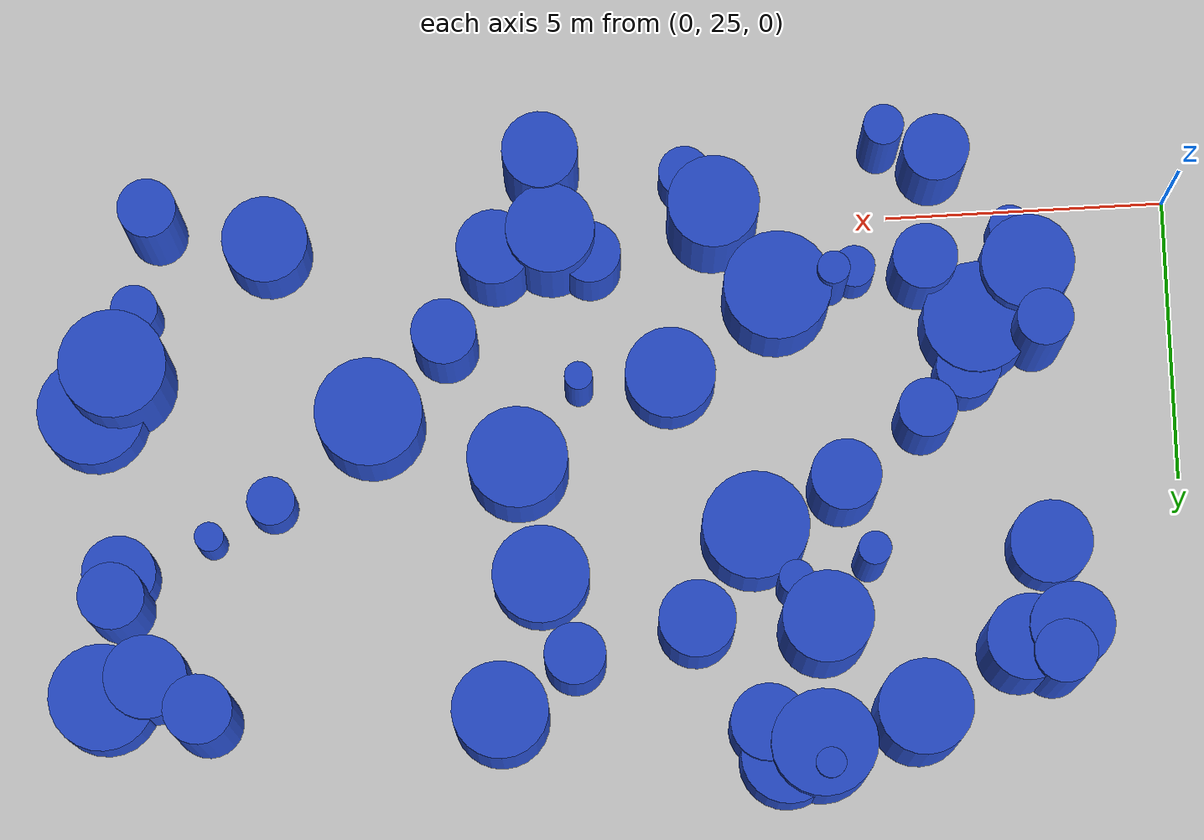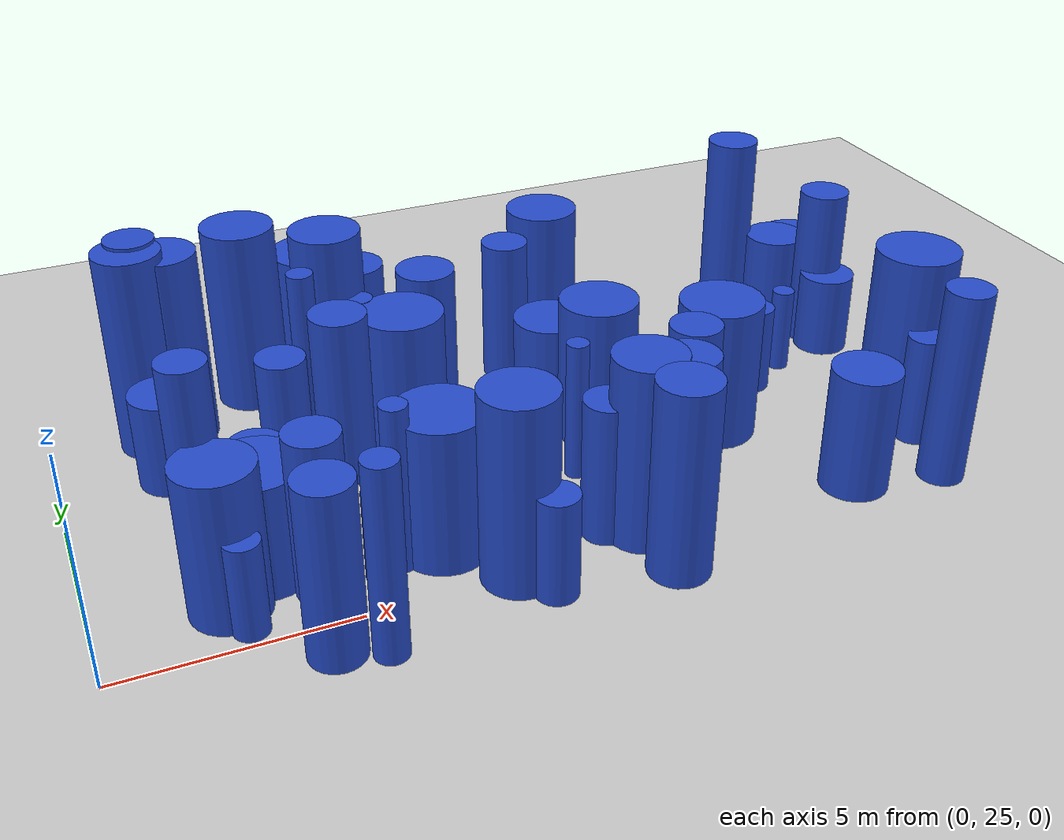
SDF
<sdf version="1.6">
 <world name="default">
  <model name="ground_plane">
   <static>1</static>
   <link name="link">
    <collision name="collision">
     <geometry><plane><normal>0 0 1</normal><size>100 100</size></plane></geometry>
     <surface><friction><ode><mu>100</mu><mu2>50</mu2></ode></friction></surface>
    </collision>
    <visual name="visual">
     <cast_shadows>0</cast_shadows>
     <geometry><plane><normal>0 0 1</normal><size>100 100</size></plane></geometry>
     <material>
      <script><uri>file://media/materials/scripts/gazebo.material</uri><name>Gazebo/Grey</name></script>
     </material>
    </visual>
   </link>
  </model>
  <model name="0">
   <static>0</static>
   <link name="link">
    <inertial>
     <mass>2</mass>
     <inertia><ixx>2.40197</ixx><ixy>0</ixy><ixz>0</ixz><iyy>2.40197</iyy><iyz>0</iyz><izz>0.81177</izz></inertia>
    </inertial>
    <collision name="collision">
     <geometry><cylinder><length>3.46071</length><radius>0.900983</radius></cylinder></geometry>
     <surface><contact><collide_without_contact>1</collide_without_contact></contact></surface>
    </collision>
    <visual name="visual">
     <geometry><cylinder><length>3.46071</length><radius>0.900983</radius></cylinder></geometry>
     <material>
      <script><uri>file://media/materials/scripts/gazebo.material</uri><name>Gazebo/Blue</name></script>
     </material>
    </visual>
    <gravity>0</gravity>
   </link>
   <pose>11.8767 29.2592 1.73036 0 -0 0</pose>
  </model>
  <model name="2">
   <static>0</static>
   <link name="link">
    <inertial>
     <mass>2</mass>
     <inertia>
      <ixx>2.45511</ixx>
      <ixy>0</ixy>
      <ixz>0</ixz>
      <iyy>2.45511</iyy>
      <iyz>0</iyz>
      <izz>0.0849773</izz>
     </inertia>
    </inertial>
    <collision name="collision">
     <geometry><cylinder><length>3.8047</length><radius>0.291509</radius></cylinder></geometry>
     <surface><contact><collide_without_contact>1</collide_without_contact></contact></surface>
    </collision>
    <visual name="visual">
     <geometry><cylinder><length>3.8047</length><radius>0.291509</radius></cylinder></geometry>
     <material>
      <script><uri>file://media/materials/scripts/gazebo.material</uri><name>Gazebo/Blue</name></script>
     </material>
    </visual>
    <gravity>0</gravity>
   </link>
   <pose>6.11121 26.2319 1.90235 0 -0 0</pose>
  </model>
  <model name="12">
   <static>0</static>
   <link name="link">
    <inertial>
     <mass>2</mass>
     <inertia><ixx>2.82446</ixx><ixy>0</ixy><ixz>0</ixz><iyy>2.82446</iyy><iyz>0</iyz><izz>0.396141</izz></inertia>
    </inertial>
    <collision name="collision">
     <geometry><cylinder><length>3.96967</length><radius>0.629398</radius></cylinder></geometry>
     <surface><contact><collide_without_contact>1</collide_without_contact></contact></surface>
    </collision>
    <visual name="visual">
     <geometry><cylinder><length>3.96967</length><radius>0.629398</radius></cylinder></geometry>
     <material>
      <script><uri>file://media/materials/scripts/gazebo.material</uri><name>Gazebo/Blue</name></script>
     </material>
    </visual>
    <gravity>0</gravity>
   </link>
   <pose>6.09867 29.9204 1.98484 0 -0 0</pose>
  </model>
  <model name="23">
   <static>0</static>
   <link name="link">
    <inertial>
     <mass>2</mass>
     <inertia>
      <ixx>3.22473</ixx>
      <ixy>0</ixy>
      <ixz>0</ixz>
      <iyy>3.22473</iyy>
      <iyz>0</iyz>
      <izz>0.0871934</izz>
     </inertia>
    </inertial>
    <collision name="collision">
     <geometry><cylinder><length>4.36884</length><radius>0.295285</radius></cylinder></geometry>
     <surface><contact><collide_without_contact>1</collide_without_contact></contact></surface>
    </collision>
    <visual name="visual">
     <geometry><cylinder><length>4.36884</length><radius>0.295285</radius></cylinder></geometry>
     <material>
      <script><uri>file://media/materials/scripts/gazebo.material</uri><name>Gazebo/Blue</name></script>
     </material>
    </visual>
    <gravity>0</gravity>
   </link>
   <pose>5.68019 31.273 2.18442 0 -0 0</pose>
  </model>
  <model name="29">
   <static>0</static>
   <link name="link">
    <inertial>
     <mass>2</mass>
     <inertia><ixx>2.78165</ixx><ixy>0</ixy><ixz>0</ixz><iyy>2.78165</iyy><iyz>0</iyz><izz>0.746331</izz></inertia>
    </inertial>
    <collision name="collision">
     <geometry><cylinder><length>3.80143</length><radius>0.863904</radius></cylinder></geometry>
     <surface><contact><collide_without_contact>1</collide_without_contact></contact></surface>
    </collision>
    <visual name="visual">
     <geometry><cylinder><length>3.80143</length><radius>0.863904</radius></cylinder></geometry>
     <material>
      <script><uri>file://media/materials/scripts/gazebo.material</uri><name>Gazebo/Blue</name></script>
     </material>
    </visual>
    <gravity>0</gravity>
   </link>
   <pose>12.4132 33.7284 1.90072 0 -0 0</pose>
  </model>
  <model name="38">
   <static>0</static>
   <link name="link">
    <inertial>
     <mass>2</mass>
     <inertia><ixx>1.23877</ixx><ixy>0</ixy><ixz>0</ixz><iyy>1.23877</iyy><iyz>0</iyz><izz>0.661511</izz></inertia>
    </inertial>
    <collision name="collision">
     <geometry><cylinder><length>2.33412</length><radius>0.813333</radius></cylinder></geometry>
     <surface><contact><collide_without_contact>1</collide_without_contact></contact></surface>
    </collision>
    <visual name="visual">
     <geometry><cylinder><length>2.33412</length><radius>0.813333</radius></cylinder></geometry>
     <material>
      <script><uri>file://media/materials/scripts/gazebo.material</uri><name>Gazebo/Blue</name></script>
     </material>
    </visual>
    <gravity>0</gravity>
   </link>
   <pose>9.0777 27.7968 1.16706 0 -0 0</pose>
  </model>
  <model name="49">
   <static>0</static>
   <link name="link">
    <inertial>
     <mass>2</mass>
     <inertia><ixx>3.34845</ixx><ixy>0</ixy><ixz>0</ixz><iyy>3.34845</iyy><iyz>0</iyz><izz>0.625624</izz></inertia>
    </inertial>
    <collision name="collision">
     <geometry><cylinder><length>4.26777</length><radius>0.790964</radius></cylinder></geometry>
     <surface><contact><collide_without_contact>1</collide_without_contact></contact></surface>
    </collision>
    <visual name="visual">
     <geometry><cylinder><length>4.26777</length><radius>0.790964</radius></cylinder></geometry>
     <material>
      <script><uri>file://media/materials/scripts/gazebo.material</uri><name>Gazebo/Blue</name></script>
     </material>
    </visual>
    <gravity>0</gravity>
   </link>
   <pose>11.0842 25.3159 2.13388 0 -0 0</pose>
  </model>
  <model name="55">
   <static>0</static>
   <link name="link">
    <inertial>
     <mass>2</mass>
     <inertia><ixx>1.0028</ixx><ixy>0</ixy><ixz>0</ixz><iyy>1.0028</iyy><iyz>0</iyz><izz>0.0791024</izz></inertia>
    </inertial>
    <collision name="collision">
     <geometry><cylinder><length>2.40406</length><radius>0.281252</radius></cylinder></geometry>
     <surface><contact><collide_without_contact>1</collide_without_contact></contact></surface>
    </collision>
    <visual name="visual">
     <geometry><cylinder><length>2.40406</length><radius>0.281252</radius></cylinder></geometry>
     <material>
      <script><uri>file://media/materials/scripts/gazebo.material</uri><name>Gazebo/Blue</name></script>
     </material>
    </visual>
    <gravity>0</gravity>
   </link>
   <pose>8.32268 25.1985 1.20203 0 -0 0</pose>
  </model>
  <model name="56">
   <static>0</static>
   <link name="link">
    <inertial>
     <mass>2</mass>
     <inertia>
      <ixx>1.84784</ixx>
      <ixy>0</ixy>
      <ixz>0</ixz>
      <iyy>1.84784</iyy>
      <iyz>0</iyz>
      <izz>0.0636746</izz>
     </inertia>
    </inertial>
    <collision name="collision">
     <geometry><cylinder><length>3.30091</length><radius>0.252338</radius></cylinder></geometry>
     <surface><contact><collide_without_contact>1</collide_without_contact></contact></surface>
    </collision>
    <visual name="visual">
     <geometry><cylinder><length>3.30091</length><radius>0.252338</radius></cylinder></geometry>
     <material>
      <script><uri>file://media/materials/scripts/gazebo.material</uri><name>Gazebo/Blue</name></script>
     </material>
    </visual>
    <gravity>0</gravity>
   </link>
   <pose>10.7197 27.8588 1.65046 0 -0 0</pose>
  </model>
  <model name="58">
   <static>0</static>
   <link name="link">
    <inertial>
     <mass>2</mass>
     <inertia>
      <ixx>0.763986</ixx>
      <ixy>0</ixy>
      <ixz>0</ixz>
      <iyy>0.763986</iyy>
      <iyz>0</iyz>
      <izz>0.0695727</izz>
     </inertia>
    </inertial>
    <collision name="collision">
     <geometry><cylinder><length>2.0917</length><radius>0.263766</radius></cylinder></geometry>
     <surface><contact><collide_without_contact>1</collide_without_contact></contact></surface>
    </collision>
    <visual name="visual">
     <geometry><cylinder><length>2.0917</length><radius>0.263766</radius></cylinder></geometry>
     <material>
      <script><uri>file://media/materials/scripts/gazebo.material</uri><name>Gazebo/Blue</name></script>
     </material>
    </visual>
    <gravity>0</gravity>
   </link>
   <pose>17.4453 30.2732 1.04585 0 -0 0</pose>
  </model>
  <model name="66">
   <static>0</static>
   <link name="link">
    <inertial>
     <mass>2</mass>
     <inertia><ixx>1.19036</ixx><ixy>0</ixy><ixz>0</ixz><iyy>1.19036</iyy><iyz>0</iyz><izz>0.340374</izz></inertia>
    </inertial>
    <collision name="collision">
     <geometry><cylinder><length>2.47407</length><radius>0.583416</radius></cylinder></geometry>
     <surface><contact><collide_without_contact>1</collide_without_contact></contact></surface>
    </collision>
    <visual name="visual">
     <geometry><cylinder><length>2.47407</length><radius>0.583416</radius></cylinder></geometry>
     <material>
      <script><uri>file://media/materials/scripts/gazebo.material</uri><name>Gazebo/Blue</name></script>
     </material>
    </visual>
    <gravity>0</gravity>
   </link>
   <pose>3.76922 27.9809 1.23704 0 -0 0</pose>
  </model>
  <model name="76">
   <static>0</static>
   <link name="link">
    <inertial>
     <mass>2</mass>
     <inertia><ixx>4.08742</ixx><ixy>0</ixy><ixz>0</ixz><iyy>4.08742</iyy><iyz>0</iyz><izz>0.660231</izz></inertia>
    </inertial>
    <collision name="collision">
     <geometry><cylinder><length>4.74803</length><radius>0.812546</radius></cylinder></geometry>
     <surface><contact><collide_without_contact>1</collide_without_contact></contact></surface>
    </collision>
    <visual name="visual">
     <geometry><cylinder><length>4.74803</length><radius>0.812546</radius></cylinder></geometry>
     <material>
      <script><uri>file://media/materials/scripts/gazebo.material</uri><name>Gazebo/Blue</name></script>
     </material>
    </visual>
    <gravity>0</gravity>
   </link>
   <pose>6.57905 32.4521 2.37402 0 -0 0</pose>
  </model>
  <model name="81">
   <static>0</static>
   <link name="link">
    <inertial>
     <mass>2</mass>
     <inertia><ixx>2.21257</ixx><ixy>0</ixy><ixz>0</ixz><iyy>2.21257</iyy><iyz>0</iyz><izz>0.306287</izz></inertia>
    </inertial>
    <collision name="collision">
     <geometry><cylinder><length>3.51519</length><radius>0.553432</radius></cylinder></geometry>
     <surface><contact><collide_without_contact>1</collide_without_contact></contact></surface>
    </collision>
    <visual name="visual">
     <geometry><cylinder><length>3.51519</length><radius>0.553432</radius></cylinder></geometry>
     <material>
      <script><uri>file://media/materials/scripts/gazebo.material</uri><name>Gazebo/Blue</name></script>
     </material>
    </visual>
    <gravity>0</gravity>
   </link>
   <pose>11.0425 32.7903 1.75759 0 -0 0</pose>
  </model>
  <model name="84">
   <static>0</static>
   <link name="link">
    <inertial>
     <mass>2</mass>
     <inertia><ixx>3.84942</ixx><ixy>0</ixy><ixz>0</ixz><iyy>3.84942</iyy><iyz>0</iyz><izz>0.583531</izz></inertia>
    </inertial>
    <collision name="collision">
     <geometry><cylinder><length>4.62017</length><radius>0.763892</radius></cylinder></geometry>
     <surface><contact><collide_without_contact>1</collide_without_contact></contact></surface>
    </collision>
    <visual name="visual">
     <geometry><cylinder><length>4.62017</length><radius>0.763892</radius></cylinder></geometry>
     <material>
      <script><uri>file://media/materials/scripts/gazebo.material</uri><name>Gazebo/Blue</name></script>
     </material>
    </visual>
    <gravity>0</gravity>
   </link>
   <pose>3.06605 32.9901 2.31008 0 -0 0</pose>
  </model>
  <model name="111">
   <static>0</static>
   <link name="link">
    <inertial>
     <mass>2</mass>
     <inertia><ixx>1.70817</ixx><ixy>0</ixy><ixz>0</ixz><iyy>1.70817</iyy><iyz>0</iyz><izz>0.588369</izz></inertia>
    </inertial>
    <collision name="collision">
     <geometry><cylinder><length>2.91271</length><radius>0.767052</radius></cylinder></geometry>
     <surface><contact><collide_without_contact>1</collide_without_contact></contact></surface>
    </collision>
    <visual name="visual">
     <geometry><cylinder><length>2.91271</length><radius>0.767052</radius></cylinder></geometry>
     <material>
      <script><uri>file://media/materials/scripts/gazebo.material</uri><name>Gazebo/Blue</name></script>
     </material>
    </visual>
    <gravity>0</gravity>
   </link>
   <pose>16.162 25.0947 1.45636 0 -0 0</pose>
  </model>
  <model name="128">
   <static>0</static>
   <link name="link">
    <inertial>
     <mass>2</mass>
     <inertia><ixx>4.19355</ixx><ixy>0</ixy><ixz>0</ixz><iyy>4.19355</iyy><iyz>0</iyz><izz>0.568289</izz></inertia>
    </inertial>
    <collision name="collision">
     <geometry><cylinder><length>4.84318</length><radius>0.75385</radius></cylinder></geometry>
     <surface><contact><collide_without_contact>1</collide_without_contact></contact></surface>
    </collision>
    <visual name="visual">
     <geometry><cylinder><length>4.84318</length><radius>0.75385</radius></cylinder></geometry>
     <material>
      <script><uri>file://media/materials/scripts/gazebo.material</uri><name>Gazebo/Blue</name></script>
     </material>
    </visual>
    <gravity>0</gravity>
   </link>
   <pose>2.32334 32.8301 2.42159 0 -0 0</pose>
  </model>
  <model name="130">
   <static>0</static>
   <link name="link">
    <inertial>
     <mass>2</mass>
     <inertia><ixx>2.29747</ixx><ixy>0</ixy><ixz>0</ixz><iyy>2.29747</iyy><iyz>0</iyz><izz>0.917787</izz></inertia>
    </inertial>
    <collision name="collision">
     <geometry><cylinder><length>3.32137</length><radius>0.958012</radius></cylinder></geometry>
     <surface><contact><collide_without_contact>1</collide_without_contact></contact></surface>
    </collision>
    <visual name="visual">
     <geometry><cylinder><length>3.32137</length><radius>0.958012</radius></cylinder></geometry>
     <material>
      <script><uri>file://media/materials/scripts/gazebo.material</uri><name>Gazebo/Blue</name></script>
     </material>
    </visual>
    <gravity>0</gravity>
   </link>
   <pose>7.72279 30.676 1.66068 0 -0 0</pose>
  </model>
  <model name="134">
   <static>0</static>
   <link name="link">
    <inertial>
     <mass>2</mass>
     <inertia><ixx>3.43491</ixx><ixy>0</ixy><ixz>0</ixz><iyy>3.43491</iyy><iyz>0</iyz><izz>0.918392</izz></inertia>
    </inertial>
    <collision name="collision">
     <geometry><cylinder><length>4.22543</length><radius>0.958327</radius></cylinder></geometry>
     <surface><contact><collide_without_contact>1</collide_without_contact></contact></surface>
    </collision>
    <visual name="visual">
     <geometry><cylinder><length>4.22543</length><radius>0.958327</radius></cylinder></geometry>
     <material>
      <script><uri>file://media/materials/scripts/gazebo.material</uri><name>Gazebo/Blue</name></script>
     </material>
    </visual>
    <gravity>0</gravity>
   </link>
   <pose>18.9092 27.2959 2.11272 0 -0 0</pose>
  </model>
  <model name="142">
   <static>0</static>
   <link name="link">
    <inertial>
     <mass>2</mass>
     <inertia><ixx>2.57149</ixx><ixy>0</ixy><ixz>0</ixz><iyy>2.57149</iyy><iyz>0</iyz><izz>0.273123</izz></inertia>
    </inertial>
    <collision name="collision">
     <geometry><cylinder><length>3.82225</length><radius>0.522611</radius></cylinder></geometry>
     <surface><contact><collide_without_contact>1</collide_without_contact></contact></surface>
    </collision>
    <visual name="visual">
     <geometry><cylinder><length>3.82225</length><radius>0.522611</radius></cylinder></geometry>
     <material>
      <script><uri>file://media/materials/scripts/gazebo.material</uri><name>Gazebo/Blue</name></script>
     </material>
    </visual>
    <gravity>0</gravity>
   </link>
   <pose>4.58908 28.803 1.91112 0 -0 0</pose>
  </model>
  <model name="159">
   <static>0</static>
   <link name="link">
    <inertial>
     <mass>2</mass>
     <inertia><ixx>2.41753</ixx><ixy>0</ixy><ixz>0</ixz><iyy>2.41753</iyy><iyz>0</iyz><izz>0.33652</izz></inertia>
    </inertial>
    <collision name="collision">
     <geometry><cylinder><length>3.67364</length><radius>0.580103</radius></cylinder></geometry>
     <surface><contact><collide_without_contact>1</collide_without_contact></contact></surface>
    </collision>
    <visual name="visual">
     <geometry><cylinder><length>3.67364</length><radius>0.580103</radius></cylinder></geometry>
     <material>
      <script><uri>file://media/materials/scripts/gazebo.material</uri><name>Gazebo/Blue</name></script>
     </material>
    </visual>
    <gravity>0</gravity>
   </link>
   <pose>4.4809 26.1024 1.83682 0 -0 0</pose>
  </model>
  <model name="173">
   <static>0</static>
   <link name="link">
    <inertial>
     <mass>2</mass>
     <inertia><ixx>1.70372</ixx><ixy>0</ixy><ixz>0</ixz><iyy>1.70372</iyy><iyz>0</iyz><izz>0.477702</izz></inertia>
    </inertial>
    <collision name="collision">
     <geometry><cylinder><length>2.96467</length><radius>0.69116</radius></cylinder></geometry>
     <surface><contact><collide_without_contact>1</collide_without_contact></contact></surface>
    </collision>
    <visual name="visual">
     <geometry><cylinder><length>2.96467</length><radius>0.69116</radius></cylinder></geometry>
     <material>
      <script><uri>file://media/materials/scripts/gazebo.material</uri><name>Gazebo/Blue</name></script>
     </material>
    </visual>
    <gravity>0</gravity>
   </link>
   <pose>7.67345 34.1495 1.48233 0 -0 0</pose>
  </model>
  <model name="179">
   <static>0</static>
   <link name="link">
    <inertial>
     <mass>2</mass>
     <inertia><ixx>2.24414</ixx><ixy>0</ixy><ixz>0</ixz><iyy>2.24414</iyy><iyz>0</iyz><izz>0.695815</izz></inertia>
    </inertial>
    <collision name="collision">
     <geometry><cylinder><length>3.37304</length><radius>0.834156</radius></cylinder></geometry>
     <surface><contact><collide_without_contact>1</collide_without_contact></contact></surface>
    </collision>
    <visual name="visual">
     <geometry><cylinder><length>3.37304</length><radius>0.834156</radius></cylinder></geometry>
     <material>
      <script><uri>file://media/materials/scripts/gazebo.material</uri><name>Gazebo/Blue</name></script>
     </material>
    </visual>
    <gravity>0</gravity>
   </link>
   <pose>2.65622 26.2548 1.68652 0 -0 0</pose>
  </model>
  <model name="185">
   <static>0</static>
   <link name="link">
    <inertial>
     <mass>2</mass>
     <inertia><ixx>3.66198</ixx><ixy>0</ixy><ixz>0</ixz><iyy>3.66198</iyy><iyz>0</iyz><izz>0.269309</izz></inertia>
    </inertial>
    <collision name="collision">
     <geometry><cylinder><length>4.60043</length><radius>0.51895</radius></cylinder></geometry>
     <surface><contact><collide_without_contact>1</collide_without_contact></contact></surface>
    </collision>
    <visual name="visual">
     <geometry><cylinder><length>4.60043</length><radius>0.51895</radius></cylinder></geometry>
     <material>
      <script><uri>file://media/materials/scripts/gazebo.material</uri><name>Gazebo/Blue</name></script>
     </material>
    </visual>
    <gravity>0</gravity>
   </link>
   <pose>18.149 24.6254 2.30022 0 -0 0</pose>
  </model>
  <model name="191">
   <static>0</static>
   <link name="link">
    <inertial>
     <mass>2</mass>
     <inertia><ixx>3.6846</ixx><ixy>0</ixy><ixz>0</ixz><iyy>3.6846</iyy><iyz>0</iyz><izz>0.720558</izz></inertia>
    </inertial>
    <collision name="collision">
     <geometry><cylinder><length>4.46609</length><radius>0.848857</radius></cylinder></geometry>
     <surface><contact><collide_without_contact>1</collide_without_contact></contact></surface>
    </collision>
    <visual name="visual">
     <geometry><cylinder><length>4.46609</length><radius>0.848857</radius></cylinder></geometry>
     <material>
      <script><uri>file://media/materials/scripts/gazebo.material</uri><name>Gazebo/Blue</name></script>
     </material>
    </visual>
    <gravity>0</gravity>
   </link>
   <pose>4.94776 34.1054 2.23304 0 -0 0</pose>
  </model>
  <model name="202">
   <static>0</static>
   <link name="link">
    <inertial>
     <mass>2</mass>
     <inertia><ixx>2.89603</ixx><ixy>0</ixy><ixz>0</ixz><iyy>2.89603</iyy><iyz>0</iyz><izz>0.355142</izz></inertia>
    </inertial>
    <collision name="collision">
     <geometry><cylinder><length>4.03866</length><radius>0.595938</radius></cylinder></geometry>
     <surface><contact><collide_without_contact>1</collide_without_contact></contact></surface>
    </collision>
    <visual name="visual">
     <geometry><cylinder><length>4.03866</length><radius>0.595938</radius></cylinder></geometry>
     <material>
      <script><uri>file://media/materials/scripts/gazebo.material</uri><name>Gazebo/Blue</name></script>
     </material>
    </visual>
    <gravity>0</gravity>
   </link>
   <pose>19.1386 31.3744 2.01933 0 -0 0</pose>
  </model>
  <model name="207">
   <static>0</static>
   <link name="link">
    <inertial>
     <mass>2</mass>
     <inertia><ixx>2.20257</ixx><ixy>0</ixy><ixz>0</ixz><iyy>2.20257</iyy><iyz>0</iyz><izz>0.475126</izz></inertia>
    </inertial>
    <collision name="collision">
     <geometry><cylinder><length>3.43367</length><radius>0.689294</radius></cylinder></geometry>
     <surface><contact><collide_without_contact>1</collide_without_contact></contact></surface>
    </collision>
    <visual name="visual">
     <geometry><cylinder><length>3.43367</length><radius>0.689294</radius></cylinder></geometry>
     <material>
      <script><uri>file://media/materials/scripts/gazebo.material</uri><name>Gazebo/Blue</name></script>
     </material>
    </visual>
    <gravity>0</gravity>
   </link>
   <pose>8.84906 32.282 1.71683 0 -0 0</pose>
  </model>
  <model name="209">
   <static>0</static>
   <link name="link">
    <inertial>
     <mass>2</mass>
     <inertia><ixx>2.42991</ixx><ixy>0</ixy><ixz>0</ixz><iyy>2.42991</iyy><iyz>0</iyz><izz>0.339042</izz></inertia>
    </inertial>
    <collision name="collision">
     <geometry><cylinder><length>3.68271</length><radius>0.582273</radius></cylinder></geometry>
     <surface><contact><collide_without_contact>1</collide_without_contact></contact></surface>
    </collision>
    <visual name="visual">
     <geometry><cylinder><length>3.68271</length><radius>0.582273</radius></cylinder></geometry>
     <material>
      <script><uri>file://media/materials/scripts/gazebo.material</uri><name>Gazebo/Blue</name></script>
     </material>
    </visual>
    <gravity>0</gravity>
   </link>
   <pose>13.0609 26.9856 1.84135 0 -0 0</pose>
  </model>
  <model name="220">
   <static>0</static>
   <link name="link">
    <inertial>
     <mass>2</mass>
     <inertia><ixx>1.2348</ixx><ixy>0</ixy><ixz>0</ixz><iyy>1.2348</iyy><iyz>0</iyz><izz>0.175576</izz></inertia>
    </inertial>
    <collision name="collision">
     <geometry><cylinder><length>2.62337</length><radius>0.419018</radius></cylinder></geometry>
     <surface><contact><collide_without_contact>1</collide_without_contact></contact></surface>
    </collision>
    <visual name="visual">
     <geometry><cylinder><length>2.62337</length><radius>0.419018</radius></cylinder></geometry>
     <material>
      <script><uri>file://media/materials/scripts/gazebo.material</uri><name>Gazebo/Blue</name></script>
     </material>
    </visual>
    <gravity>0</gravity>
   </link>
   <pose>18.5545 26.1727 1.31169 0 -0 0</pose>
  </model>
  <model name="226">
   <static>0</static>
   <link name="link">
    <inertial>
     <mass>2</mass>
     <inertia>
      <ixx>0.899999</ixx>
      <ixy>0</ixy>
      <ixz>0</ixz>
      <iyy>0.899999</iyy>
      <iyz>0</iyz>
      <izz>0.446761</izz>
     </inertia>
    </inertial>
    <collision name="collision">
     <geometry><cylinder><length>2.01487</length><radius>0.668402</radius></cylinder></geometry>
     <surface><contact><collide_without_contact>1</collide_without_contact></contact></surface>
    </collision>
    <visual name="visual">
     <geometry><cylinder><length>2.01487</length><radius>0.668402</radius></cylinder></geometry>
     <material>
      <script><uri>file://media/materials/scripts/gazebo.material</uri><name>Gazebo/Blue</name></script>
     </material>
    </visual>
    <gravity>0</gravity>
   </link>
   <pose>19.0865 30.8277 1.00744 0 -0 0</pose>
  </model>
  <model name="229">
   <static>0</static>
   <link name="link">
    <inertial>
     <mass>2</mass>
     <inertia><ixx>1.23386</ixx><ixy>0</ixy><ixz>0</ixz><iyy>1.23386</iyy><iyz>0</iyz><izz>0.565515</izz></inertia>
    </inertial>
    <collision name="collision">
     <geometry><cylinder><length>2.38885</length><radius>0.752008</radius></cylinder></geometry>
     <surface><contact><collide_without_contact>1</collide_without_contact></contact></surface>
    </collision>
    <visual name="visual">
     <geometry><cylinder><length>2.38885</length><radius>0.752008</radius></cylinder></geometry>
     <material>
      <script><uri>file://media/materials/scripts/gazebo.material</uri><name>Gazebo/Blue</name></script>
     </material>
    </visual>
    <gravity>0</gravity>
   </link>
   <pose>18.6936 32.7255 1.19443 0 -0 0</pose>
  </model>
  <model name="230">
   <static>0</static>
   <link name="link">
    <inertial>
     <mass>2</mass>
     <inertia><ixx>1.61781</ixx><ixy>0</ixy><ixz>0</ixz><iyy>1.61781</iyy><iyz>0</iyz><izz>0.759354</izz></inertia>
    </inertial>
    <collision name="collision">
     <geometry><cylinder><length>2.72558</length><radius>0.871409</radius></cylinder></geometry>
     <surface><contact><collide_without_contact>1</collide_without_contact></contact></surface>
    </collision>
    <visual name="visual">
     <geometry><cylinder><length>2.72558</length><radius>0.871409</radius></cylinder></geometry>
     <material>
      <script><uri>file://media/materials/scripts/gazebo.material</uri><name>Gazebo/Blue</name></script>
     </material>
    </visual>
    <gravity>0</gravity>
   </link>
   <pose>7.33627 34.7357 1.36279 0 -0 0</pose>
  </model>
  <model name="248">
   <static>0</static>
   <link name="link">
    <inertial>
     <mass>2</mass>
     <inertia><ixx>4.14201</ixx><ixy>0</ixy><ixz>0</ixz><iyy>4.14201</iyy><iyz>0</iyz><izz>0.382015</izz></inertia>
    </inertial>
    <collision name="collision">
     <geometry><cylinder><length>4.86888</length><radius>0.618074</radius></cylinder></geometry>
     <surface><contact><collide_without_contact>1</collide_without_contact></contact></surface>
    </collision>
    <visual name="visual">
     <geometry><cylinder><length>4.86888</length><radius>0.618074</radius></cylinder></geometry>
     <material>
      <script><uri>file://media/materials/scripts/gazebo.material</uri><name>Gazebo/Blue</name></script>
     </material>
    </visual>
    <gravity>0</gravity>
   </link>
   <pose>17.681 33.4967 2.43444 0 -0 0</pose>
  </model>
  <model name="277">
   <static>0</static>
   <link name="link">
    <inertial>
     <mass>2</mass>
     <inertia><ixx>1.18328</ixx><ixy>0</ixy><ixz>0</ixz><iyy>1.18328</iyy><iyz>0</iyz><izz>0.931912</izz></inertia>
    </inertial>
    <collision name="collision">
     <geometry><cylinder><length>2.0746</length><radius>0.965356</radius></cylinder></geometry>
     <surface><contact><collide_without_contact>1</collide_without_contact></contact></surface>
    </collision>
    <visual name="visual">
     <geometry><cylinder><length>2.0746</length><radius>0.965356</radius></cylinder></geometry>
     <material>
      <script><uri>file://media/materials/scripts/gazebo.material</uri><name>Gazebo/Blue</name></script>
     </material>
    </visual>
    <gravity>0</gravity>
   </link>
   <pose>19.443 27.9091 1.0373 0 -0 0</pose>
  </model>
  <model name="286">
   <static>0</static>
   <link name="link">
    <inertial>
     <mass>2</mass>
     <inertia><ixx>1.03165</ixx><ixy>0</ixy><ixz>0</ixz><iyy>1.03165</iyy><iyz>0</iyz><izz>0.212197</izz></inertia>
    </inertial>
    <collision name="collision">
     <geometry><cylinder><length>2.35655</length><radius>0.460649</radius></cylinder></geometry>
     <surface><contact><collide_without_contact>1</collide_without_contact></contact></surface>
    </collision>
    <visual name="visual">
     <geometry><cylinder><length>2.35655</length><radius>0.460649</radius></cylinder></geometry>
     <material>
      <script><uri>file://media/materials/scripts/gazebo.material</uri><name>Gazebo/Blue</name></script>
     </material>
    </visual>
    <gravity>0</gravity>
   </link>
   <pose>8.63706 24.2219 1.17827 0 -0 0</pose>
  </model>
  <model name="311">
   <static>0</static>
   <link name="link">
    <inertial>
     <mass>2</mass>
     <inertia><ixx>3.47505</ixx><ixy>0</ixy><ixz>0</ixz><iyy>3.47505</iyy><iyz>0</iyz><izz>0.455711</izz></inertia>
    </inertial>
    <collision name="collision">
     <geometry><cylinder><length>4.41398</length><radius>0.675064</radius></cylinder></geometry>
     <surface><contact><collide_without_contact>1</collide_without_contact></contact></surface>
    </collision>
    <visual name="visual">
     <geometry><cylinder><length>4.41398</length><radius>0.675064</radius></cylinder></geometry>
     <material>
      <script><uri>file://media/materials/scripts/gazebo.material</uri><name>Gazebo/Blue</name></script>
     </material>
    </visual>
    <gravity>0</gravity>
   </link>
   <pose>11.1914 23.9374 2.20699 0 -0 0</pose>
  </model>
  <model name="335">
   <static>0</static>
   <link name="link">
    <inertial>
     <mass>2</mass>
     <inertia><ixx>1.09017</ixx><ixy>0</ixy><ixz>0</ixz><iyy>1.09017</iyy><iyz>0</iyz><izz>0.555493</izz></inertia>
    </inertial>
    <collision name="collision">
     <geometry><cylinder><length>2.20784</length><radius>0.745314</radius></cylinder></geometry>
     <surface><contact><collide_without_contact>1</collide_without_contact></contact></surface>
    </collision>
    <visual name="visual">
     <geometry><cylinder><length>2.20784</length><radius>0.745314</radius></cylinder></geometry>
     <material>
      <script><uri>file://media/materials/scripts/gazebo.material</uri><name>Gazebo/Blue</name></script>
     </material>
    </visual>
    <gravity>0</gravity>
   </link>
   <pose>2.45809 31.1658 1.10392 0 -0 0</pose>
  </model>
  <model name="337">
   <static>0</static>
   <link name="link">
    <inertial>
     <mass>2</mass>
     <inertia><ixx>2.32795</ixx><ixy>0</ixy><ixz>0</ixz><iyy>2.32795</iyy><iyz>0</iyz><izz>0.931843</izz></inertia>
    </inertial>
    <collision name="collision">
     <geometry><cylinder><length>3.34248</length><radius>0.96532</radius></cylinder></geometry>
     <surface><contact><collide_without_contact>1</collide_without_contact></contact></surface>
    </collision>
    <visual name="visual">
     <geometry><cylinder><length>3.34248</length><radius>0.96532</radius></cylinder></geometry>
     <material>
      <script><uri>file://media/materials/scripts/gazebo.material</uri><name>Gazebo/Blue</name></script>
     </material>
    </visual>
    <gravity>0</gravity>
   </link>
   <pose>7.10722 26.4412 1.67124 0 -0 0</pose>
  </model>
  <model name="363">
   <static>0</static>
   <link name="link">
    <inertial>
     <mass>2</mass>
     <inertia><ixx>2.73915</ixx><ixy>0</ixy><ixz>0</ixz><iyy>2.73915</iyy><iyz>0</iyz><izz>0.35163</izz></inertia>
    </inertial>
    <collision name="collision">
     <geometry><cylinder><length>3.92173</length><radius>0.592984</radius></cylinder></geometry>
     <surface><contact><collide_without_contact>1</collide_without_contact></contact></surface>
    </collision>
    <visual name="visual">
     <geometry><cylinder><length>3.92173</length><radius>0.592984</radius></cylinder></geometry>
     <material>
      <script><uri>file://media/materials/scripts/gazebo.material</uri><name>Gazebo/Blue</name></script>
     </material>
    </visual>
    <gravity>0</gravity>
   </link>
   <pose>4.19436 24.2096 1.96087 0 -0 0</pose>
  </model>
  <model name="364">
   <static>0</static>
   <link name="link">
    <inertial>
     <mass>2</mass>
     <inertia><ixx>1.12692</ixx><ixy>0</ixy><ixz>0</ixz><iyy>1.12692</iyy><iyz>0</iyz><izz>0.768497</izz></inertia>
    </inertial>
    <collision name="collision">
     <geometry><cylinder><length>2.11093</length><radius>0.87664</radius></cylinder></geometry>
     <surface><contact><collide_without_contact>1</collide_without_contact></contact></surface>
    </collision>
    <visual name="visual">
     <geometry><cylinder><length>2.11093</length><radius>0.87664</radius></cylinder></geometry>
     <material>
      <script><uri>file://media/materials/scripts/gazebo.material</uri><name>Gazebo/Blue</name></script>
     </material>
    </visual>
    <gravity>0</gravity>
   </link>
   <pose>11.5776 31.2523 1.05546 0 -0 0</pose>
  </model>
  <model name="380">
   <static>0</static>
   <link name="link">
    <inertial>
     <mass>2</mass>
     <inertia><ixx>2.75391</ixx><ixy>0</ixy><ixz>0</ixz><iyy>2.75391</iyy><iyz>0</iyz><izz>0.441703</izz></inertia>
    </inertial>
    <collision name="collision">
     <geometry><cylinder><length>3.89851</length><radius>0.664608</radius></cylinder></geometry>
     <surface><contact><collide_without_contact>1</collide_without_contact></contact></surface>
    </collision>
    <visual name="visual">
     <geometry><cylinder><length>3.89851</length><radius>0.664608</radius></cylinder></geometry>
     <material>
      <script><uri>file://media/materials/scripts/gazebo.material</uri><name>Gazebo/Blue</name></script>
     </material>
    </visual>
    <gravity>0</gravity>
   </link>
   <pose>12.1009 25.5569 1.94925 0 -0 0</pose>
  </model>
  <model name="384">
   <static>0</static>
   <link name="link">
    <inertial>
     <mass>2</mass>
     <inertia>
      <ixx>0.857641</ixx>
      <ixy>0</ixy>
      <ixz>0</ixz>
      <iyy>0.857641</iyy>
      <iyz>0</iyz>
      <izz>0.188958</izz>
     </inertia>
    </inertial>
    <collision name="collision">
     <geometry><cylinder><length>2.13985</length><radius>0.434693</radius></cylinder></geometry>
     <surface><contact><collide_without_contact>1</collide_without_contact></contact></surface>
    </collision>
    <visual name="visual">
     <geometry><cylinder><length>2.13985</length><radius>0.434693</radius></cylinder></geometry>
     <material>
      <script><uri>file://media/materials/scripts/gazebo.material</uri><name>Gazebo/Blue</name></script>
     </material>
    </visual>
    <gravity>0</gravity>
   </link>
   <pose>16.3126 29.6959 1.06993 0 -0 0</pose>
  </model>
  <model name="389">
   <static>0</static>
   <link name="link">
    <inertial>
     <mass>2</mass>
     <inertia><ixx>1.20185</ixx><ixy>0</ixy><ixz>0</ixz><iyy>1.20185</iyy><iyz>0</iyz><izz>0.918807</izz></inertia>
    </inertial>
    <collision name="collision">
     <geometry><cylinder><length>2.11062</length><radius>0.958544</radius></cylinder></geometry>
     <surface><contact><collide_without_contact>1</collide_without_contact></contact></surface>
    </collision>
    <visual name="visual">
     <geometry><cylinder><length>2.11062</length><radius>0.958544</radius></cylinder></geometry>
     <material>
      <script><uri>file://media/materials/scripts/gazebo.material</uri><name>Gazebo/Blue</name></script>
     </material>
    </visual>
    <gravity>0</gravity>
   </link>
   <pose>19.4966 33.0342 1.05531 0 -0 0</pose>
  </model>
  <model name="392">
   <static>0</static>
   <link name="link">
    <inertial>
     <mass>2</mass>
     <inertia>
      <ixx>2.05546</ixx>
      <ixy>0</ixy>
      <ixz>0</ixz>
      <iyy>2.05546</iyy>
      <iyz>0</iyz>
      <izz>0.0752646</izz>
     </inertia>
    </inertial>
    <collision name="collision">
     <geometry><cylinder><length>3.4795</length><radius>0.274344</radius></cylinder></geometry>
     <surface><contact><collide_without_contact>1</collide_without_contact></contact></surface>
    </collision>
    <visual name="visual">
     <geometry><cylinder><length>3.4795</length><radius>0.274344</radius></cylinder></geometry>
     <material>
      <script><uri>file://media/materials/scripts/gazebo.material</uri><name>Gazebo/Blue</name></script>
     </material>
    </visual>
    <gravity>0</gravity>
   </link>
   <pose>6.63304 34.9485 1.73975 0 -0 0</pose>
  </model>
  <model name="396">
   <static>0</static>
   <link name="link">
    <inertial>
     <mass>2</mass>
     <inertia><ixx>4.19129</ixx><ixy>0</ixy><ixz>0</ixz><iyy>4.19129</iyy><iyz>0</iyz><izz>0.314435</izz></inertia>
    </inertial>
    <collision name="collision">
     <geometry><cylinder><length>4.9198</length><radius>0.560745</radius></cylinder></geometry>
     <surface><contact><collide_without_contact>1</collide_without_contact></contact></surface>
    </collision>
    <visual name="visual">
     <geometry><cylinder><length>4.9198</length><radius>0.560745</radius></cylinder></geometry>
     <material>
      <script><uri>file://media/materials/scripts/gazebo.material</uri><name>Gazebo/Blue</name></script>
     </material>
    </visual>
    <gravity>0</gravity>
   </link>
   <pose>2.46641 33.2888 2.4599 0 -0 0</pose>
  </model>
  <model name="417">
   <static>0</static>
   <link name="link">
    <inertial>
     <mass>2</mass>
     <inertia>
      <ixx>0.730104</ixx>
      <ixy>0</ixy>
      <ixz>0</ixz>
      <iyy>0.730104</iyy>
      <iyz>0</iyz>
      <izz>0.0630956</izz>
     </inertia>
    </inertial>
    <collision name="collision">
     <geometry><cylinder><length>2.04728</length><radius>0.251188</radius></cylinder></geometry>
     <surface><contact><collide_without_contact>1</collide_without_contact></contact></surface>
    </collision>
    <visual name="visual">
     <geometry><cylinder><length>2.04728</length><radius>0.251188</radius></cylinder></geometry>
     <material>
      <script><uri>file://media/materials/scripts/gazebo.material</uri><name>Gazebo/Blue</name></script>
     </material>
    </visual>
    <gravity>0</gravity>
   </link>
   <pose>13.3187 27.0722 1.02364 0 -0 0</pose>
  </model>
  <model name="439">
   <static>0</static>
   <link name="link">
    <inertial>
     <mass>2</mass>
     <inertia><ixx>2.35934</ixx><ixy>0</ixy><ixz>0</ixz><iyy>2.35934</iyy><iyz>0</iyz><izz>0.927995</izz></inertia>
    </inertial>
    <collision name="collision">
     <geometry><cylinder><length>3.37224</length><radius>0.963325</radius></cylinder></geometry>
     <surface><contact><collide_without_contact>1</collide_without_contact></contact></surface>
    </collision>
    <visual name="visual">
     <geometry><cylinder><length>3.37224</length><radius>0.963325</radius></cylinder></geometry>
     <material>
      <script><uri>file://media/materials/scripts/gazebo.material</uri><name>Gazebo/Blue</name></script>
     </material>
    </visual>
    <gravity>0</gravity>
   </link>
   <pose>14.469 28.3067 1.68612 0 -0 0</pose>
  </model>
  <model name="441">
   <static>0</static>
   <link name="link">
    <inertial>
     <mass>2</mass>
     <inertia><ixx>3.46291</ixx><ixy>0</ixy><ixz>0</ixz><iyy>3.46291</iyy><iyz>0</iyz><izz>0.663833</izz></inertia>
    </inertial>
    <collision name="collision">
     <geometry><cylinder><length>4.33427</length><radius>0.81476</radius></cylinder></geometry>
     <surface><contact><collide_without_contact>1</collide_without_contact></contact></surface>
    </collision>
    <visual name="visual">
     <geometry><cylinder><length>4.33427</length><radius>0.81476</radius></cylinder></geometry>
     <material>
      <script><uri>file://media/materials/scripts/gazebo.material</uri><name>Gazebo/Blue</name></script>
     </material>
    </visual>
    <gravity>0</gravity>
   </link>
   <pose>8.17787 25.0067 2.16714 0 -0 0</pose>
  </model>
  <model name="461">
   <static>0</static>
   <link name="link">
    <inertial>
     <mass>2</mass>
     <inertia><ixx>1.87009</ixx><ixy>0</ixy><ixz>0</ixz><iyy>1.87009</iyy><iyz>0</iyz><izz>0.29639</izz></inertia>
    </inertial>
    <collision name="collision">
     <geometry><cylinder><length>3.21424</length><radius>0.544417</radius></cylinder></geometry>
     <surface><contact><collide_without_contact>1</collide_without_contact></contact></surface>
    </collision>
    <visual name="visual">
     <geometry><cylinder><length>3.21424</length><radius>0.544417</radius></cylinder></geometry>
     <material>
      <script><uri>file://media/materials/scripts/gazebo.material</uri><name>Gazebo/Blue</name></script>
     </material>
    </visual>
    <gravity>0</gravity>
   </link>
   <pose>10.3959 25.6613 1.60712 0 -0 0</pose>
  </model>
  <model name="464">
   <static>0</static>
   <link name="link">
    <inertial>
     <mass>2</mass>
     <inertia><ixx>3.1919</ixx><ixy>0</ixy><ixz>0</ixz><iyy>3.1919</iyy><iyz>0</iyz><izz>0.129104</izz></inertia>
    </inertial>
    <collision name="collision">
     <geometry><cylinder><length>4.33175</length><radius>0.359311</radius></cylinder></geometry>
     <surface><contact><collide_without_contact>1</collide_without_contact></contact></surface>
    </collision>
    <visual name="visual">
     <geometry><cylinder><length>4.33175</length><radius>0.359311</radius></cylinder></geometry>
     <material>
      <script><uri>file://media/materials/scripts/gazebo.material</uri><name>Gazebo/Blue</name></script>
     </material>
    </visual>
    <gravity>0</gravity>
   </link>
   <pose>5.11177 23.8081 2.16588 0 -0 0</pose>
  </model>
  <model name="469">
   <static>0</static>
   <link name="link">
    <inertial>
     <mass>2</mass>
     <inertia><ixx>2.28058</ixx><ixy>0</ixy><ixz>0</ixz><iyy>2.28058</iyy><iyz>0</iyz><izz>0.911633</izz></inertia>
    </inertial>
    <collision name="collision">
     <geometry><cylinder><length>3.30887</length><radius>0.954795</radius></cylinder></geometry>
     <surface><contact><collide_without_contact>1</collide_without_contact></contact></surface>
    </collision>
    <visual name="visual">
     <geometry><cylinder><length>3.30887</length><radius>0.954795</radius></cylinder></geometry>
     <material>
      <script><uri>file://media/materials/scripts/gazebo.material</uri><name>Gazebo/Blue</name></script>
     </material>
    </visual>
    <gravity>0</gravity>
   </link>
   <pose>6.7205 34.5789 1.65443 0 -0 0</pose>
  </model>
  <model name="470">
   <static>0</static>
   <link name="link">
    <inertial>
     <mass>2</mass>
     <inertia><ixx>1.60832</ixx><ixy>0</ixy><ixz>0</ixz><iyy>1.60832</iyy><iyz>0</iyz><izz>0.97767</izz></inertia>
    </inertial>
    <collision name="collision">
     <geometry><cylinder><length>2.5917</length><radius>0.988772</radius></cylinder></geometry>
     <surface><contact><collide_without_contact>1</collide_without_contact></contact></surface>
    </collision>
    <visual name="visual">
     <geometry><cylinder><length>2.5917</length><radius>0.988772</radius></cylinder></geometry>
     <material>
      <script><uri>file://media/materials/scripts/gazebo.material</uri><name>Gazebo/Blue</name></script>
     </material>
    </visual>
    <gravity>0</gravity>
   </link>
   <pose>3.55711 27.12 1.29585 0 -0 0</pose>
  </model>
  <model name="472">
   <static>0</static>
   <link name="link">
    <inertial>
     <mass>2</mass>
     <inertia>
      <ixx>0.810129</ixx>
      <ixy>0</ixy>
      <ixz>0</ixz>
      <iyy>0.810129</iyy>
      <iyz>0</iyz>
      <izz>0.140109</izz>
     </inertia>
    </inertial>
    <collision name="collision">
     <geometry><cylinder><length>2.10724</length><radius>0.374311</radius></cylinder></geometry>
     <surface><contact><collide_without_contact>1</collide_without_contact></contact></surface>
    </collision>
    <visual name="visual">
     <geometry><cylinder><length>2.10724</length><radius>0.374311</radius></cylinder></geometry>
     <material>
      <script><uri>file://media/materials/scripts/gazebo.material</uri><name>Gazebo/Blue</name></script>
     </material>
    </visual>
    <gravity>0</gravity>
   </link>
   <pose>2.87534 25.4727 1.05362 0 -0 0</pose>
  </model>
  <model name="478">
   <static>0</static>
   <link name="link">
    <inertial>
     <mass>2</mass>
     <inertia>
      <ixx>1.90147</ixx>
      <ixy>0</ixy>
      <ixz>0</ixz>
      <iyy>1.90147</iyy>
      <iyz>0</iyz>
      <izz>0.0984095</izz>
     </inertia>
    </inertial>
    <collision name="collision">
     <geometry><cylinder><length>3.33371</length><radius>0.313703</radius></cylinder></geometry>
     <surface><contact><collide_without_contact>1</collide_without_contact></contact></surface>
    </collision>
    <visual name="visual">
     <geometry><cylinder><length>3.33371</length><radius>0.313703</radius></cylinder></geometry>
     <material>
      <script><uri>file://media/materials/scripts/gazebo.material</uri><name>Gazebo/Blue</name></script>
     </material>
    </visual>
    <gravity>0</gravity>
   </link>
   <pose>7.05756 31.6414 1.66685 0 -0 0</pose>
  </model>
  <model name="479">
   <static>0</static>
   <link name="link">
    <inertial>
     <mass>2</mass>
     <inertia><ixx>4.1683</ixx><ixy>0</ixy><ixz>0</ixz><iyy>4.1683</iyy><iyz>0</iyz><izz>0.252032</izz></inertia>
    </inertial>
    <collision name="collision">
     <geometry><cylinder><length>4.92481</length><radius>0.502028</radius></cylinder></geometry>
     <surface><contact><collide_without_contact>1</collide_without_contact></contact></surface>
    </collision>
    <visual name="visual">
     <geometry><cylinder><length>4.92481</length><radius>0.502028</radius></cylinder></geometry>
     <material>
      <script><uri>file://media/materials/scripts/gazebo.material</uri><name>Gazebo/Blue</name></script>
     </material>
    </visual>
    <gravity>0</gravity>
   </link>
   <pose>2.49131 27.4185 2.4624 0 -0 0</pose>
  </model>
  <model name="490">
   <static>0</static>
   <link name="link">
    <inertial>
     <mass>2</mass>
     <inertia>
      <ixx>0.767071</ixx>
      <ixy>0</ixy>
      <ixz>0</ixz>
      <iyy>0.767071</iyy>
      <iyz>0</iyz>
      <izz>0.139419</izz>
     </inertia>
    </inertial>
    <collision name="collision">
     <geometry><cylinder><length>2.04552</length><radius>0.373389</radius></cylinder></geometry>
     <surface><contact><collide_without_contact>1</collide_without_contact></contact></surface>
    </collision>
    <visual name="visual">
     <geometry><cylinder><length>2.04552</length><radius>0.373389</radius></cylinder></geometry>
     <material>
      <script><uri>file://media/materials/scripts/gazebo.material</uri><name>Gazebo/Blue</name></script>
     </material>
    </visual>
    <gravity>0</gravity>
   </link>
   <pose>5.68615 26.0426 1.02276 0 -0 0</pose>
  </model>
 </world>
</sdf>
